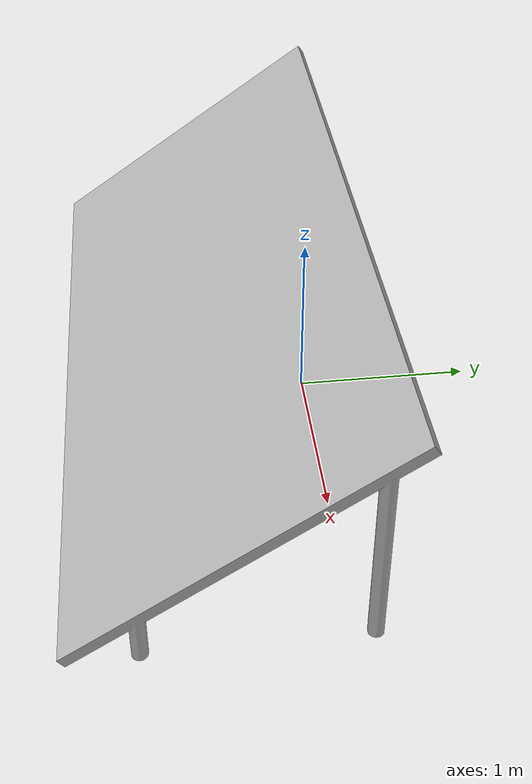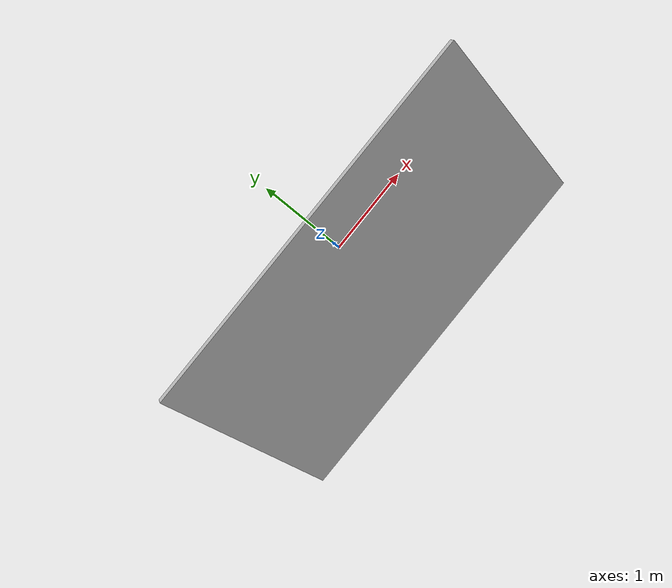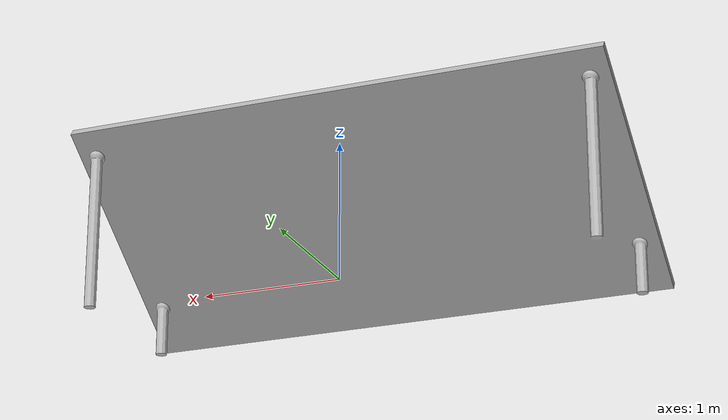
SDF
<?xml version="1.0" ?>
<sdf version="1.5">
  <model name="solar_panel">
    <static>true</static>
    <link name="link">
      <pose>0 0 0 1.570796327 0 0</pose>
      <visual name="visual">
        <geometry>
          <mesh>
            <uri>model://solar_panel/meshes/solar_panel.obj</uri>
            <scale>1 1 1</scale>
          </mesh>
        </geometry>
      </visual>
    </link>
  </model>
</sdf>
